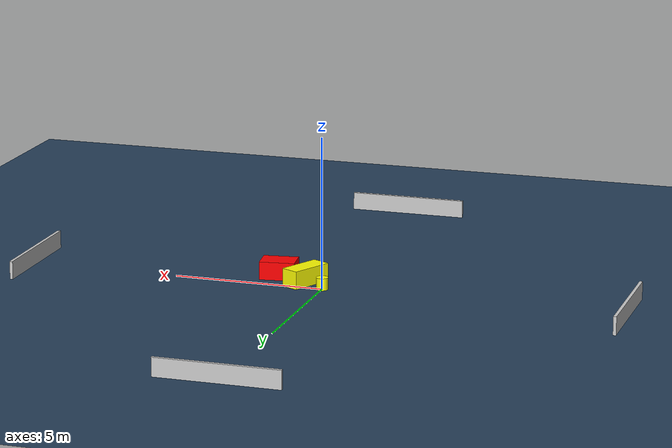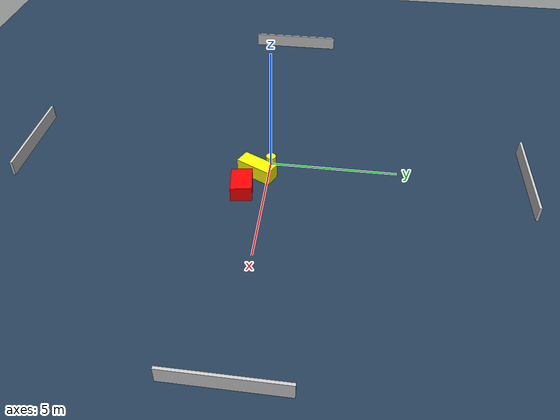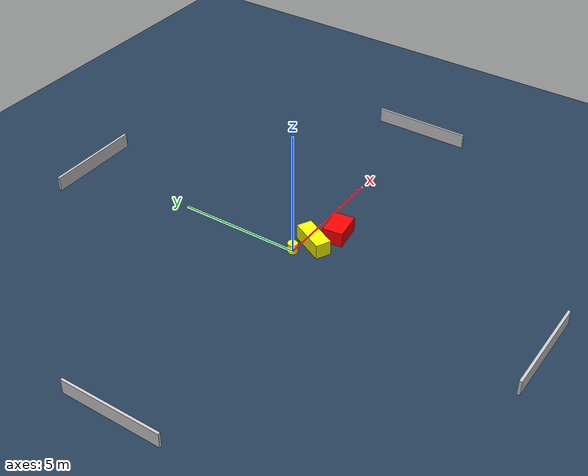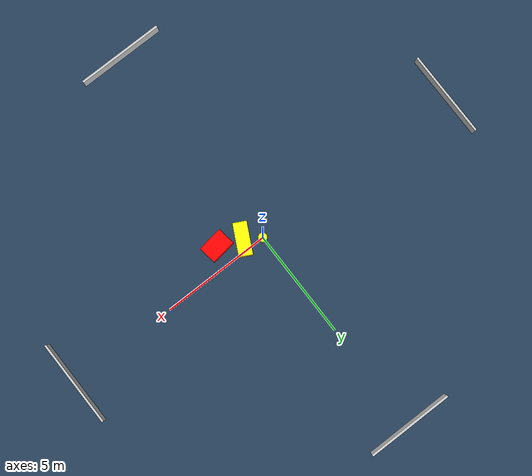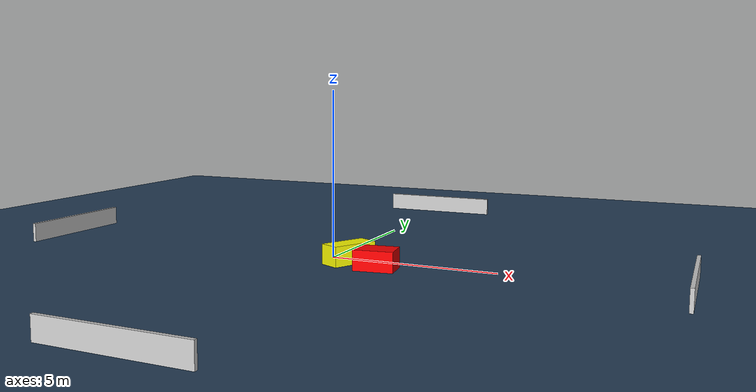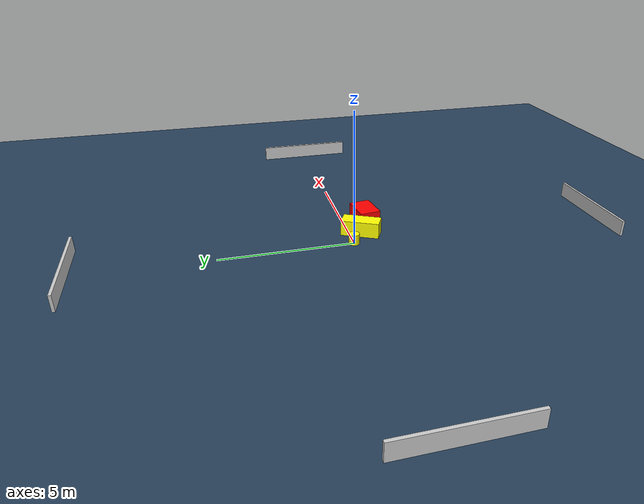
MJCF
<?xml version="1.0" ?>
<mujoco model="generated_environment">
  <option timestep="0.01" integrator="RK4" cone="elliptic"/>
  <default>
    <geom density="1"/>
  </default>
  <asset>
    <texture builtin="gradient" height="3072" name="skybox" rgb1="0.3 0.5 0.7" rgb2="0 0 0" type="skybox" width="512"/>
    <texture builtin="checker" height="300" name="groundplane" rgb1="0.2 0.3 0.4" rgb2="0.1 0.2 0.3" type="2d" width="300"/>
    <material name="groundplane" reflectance="0.2" texrepeat="5 5" texture="groundplane"/>
  </asset>
  <worldbody>
    <light dir="0 0 -1" directional="true" pos="0 0 1.5"/>
    <geom condim="3" friction="0.5 0.005 0.001" material="groundplane" name="floor" pos="0 0 0" size="0 0 0.05" type="plane"/>
    <body name="walls">
      <geom name="wall_1" condim="4" pos="-10.0 0.0 0.3" rgba="0.800000011920929 0.800000011920929 0.800000011920929 1.0" size="0.05 2.0 0.3" type="box"/>
      <geom name="wall_2" condim="4" pos="10.0 0.0 0.3" rgba="0.800000011920929 0.800000011920929 0.800000011920929 1.0" size="0.05 2.0 0.3" type="box"/>
      <geom name="wall_3" condim="4" pos="0.0 -10.0 0.3" rgba="0.800000011920929 0.800000011920929 0.800000011920929 1.0" size="2.0 0.05 0.3" type="box"/>
      <geom name="wall_4" condim="4" pos="0.0 10.0 0.3" rgba="0.800000011920929 0.800000011920929 0.800000011920929 1.0" size="2.0 0.05 0.3" type="box"/>
    </body>
    <body name="robot">
      <joint name="joint_x" type="slide" pos="0 0 0" axis="1 0 0"/>
      <joint name="joint_y" type="slide" pos="0 0 0" axis="0 1 0"/>
      <geom name="robot" type="cylinder" pos="0.0 0.0 0.2" size="0.2 0.2 0.0" mass="5.0" friction="1.0 0.005 0.0001" condim="4" rgba="1.0 1.0 0.0 1.0"/>
    </body>
    <body name="obstacle_1_movable">
      <geom name="obstacle_1_movable" condim="4" pos="0.7186082648229132 -0.4597277916790203 0.3" euler="0 0 332.9447994519154" friction="0.0 0.005 0.001" rgba="1.0 1.0 0.0 1.0" size="0.31119670418408646 0.7323632464560583 0.3" type="box" mass="0.1"/>
      <joint type="free"/>
    </body>
    <body name="obstacle_2_static">
      <geom name="obstacle_2_static" condim="4" pos="1.7658315691181763 -0.9005579584088881 0.3" euler="0 0 97.61391024651384" friction="0.0 0.005 0.001" rgba="1.0 0.0 0.0 1.0" size="0.4095081548401769 0.5825269445169512 0.3" type="box"/>
    </body>
  </worldbody>
  <actuator>
    <motor name="actuator_x" joint="joint_x" gear="1" ctrlrange="-1 1"/>
    <motor name="actuator_y" joint="joint_y" gear="1" ctrlrange="-1 1"/>
  </actuator>
</mujoco>
